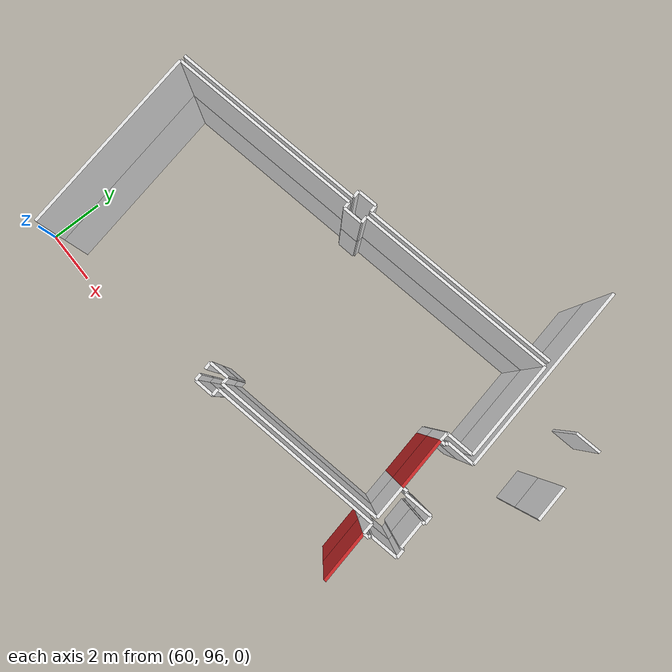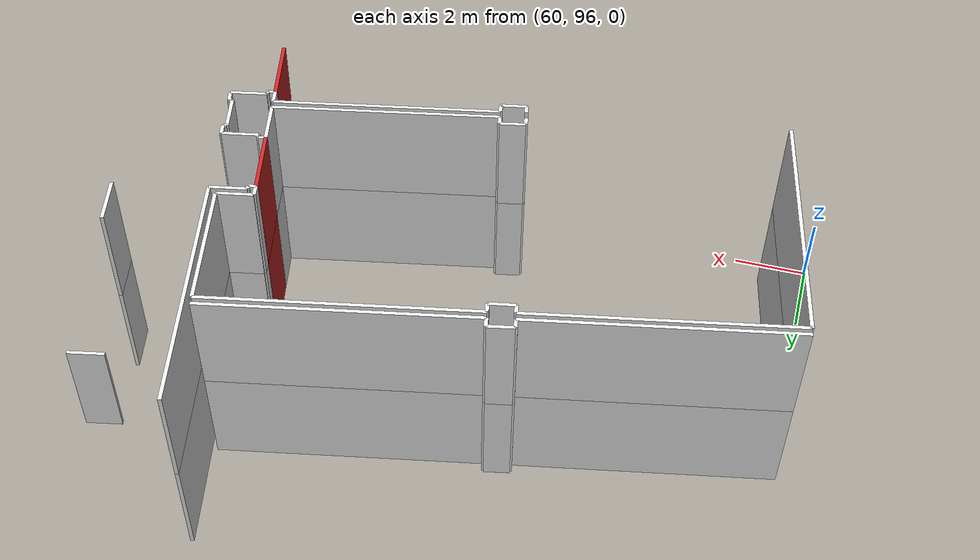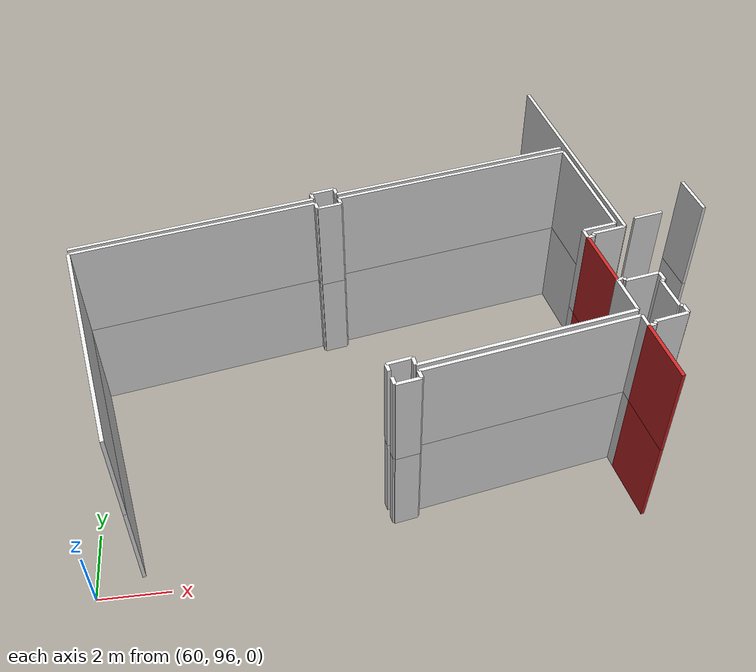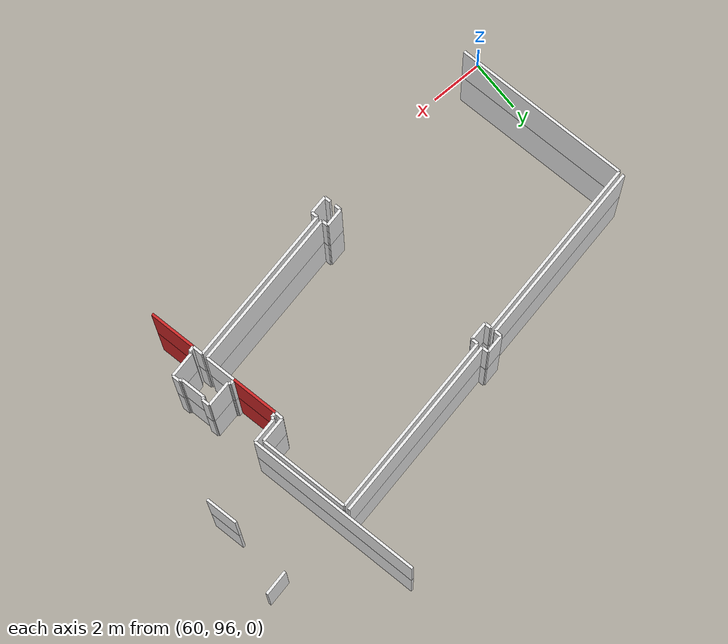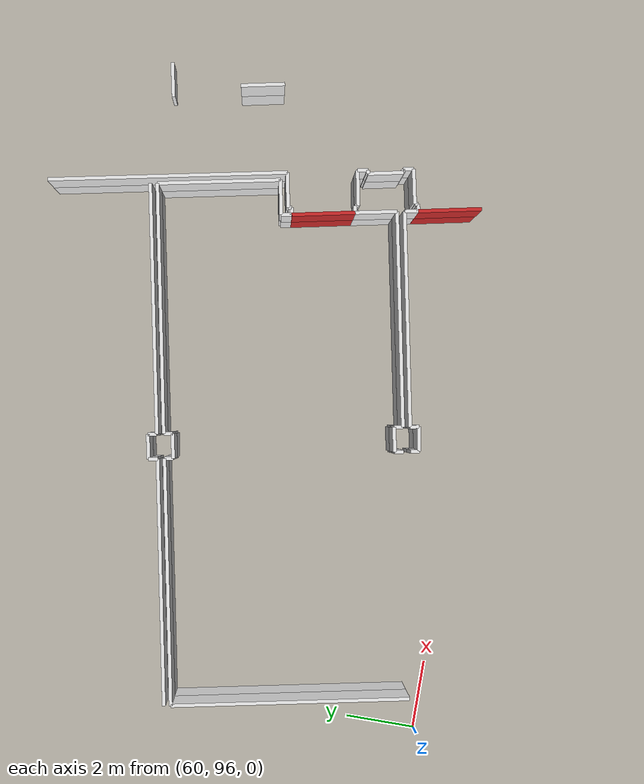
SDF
<sdf version="1.6">
 <world name="default">
  <model name="wall_74.4_101.3_1.5">
   <static>true</static>
   <pose>74.38000000000466 101.26000000000931 1.5 0 0 -1.3690339825092397</pose>
   <link name="link">
    <visual name="visual">
     <geometry><box><size>1.796440926065282 0.1 3</size></box></geometry>
     <material>
      <script><uri>file://media/materials/scripts/gazebo.material</uri><name>Gazebo/Red</name></script>
     </material>
    </visual>
    <collision name="collision"><geometry><box><size>1.796440926065282 0.1 3</size></box></geometry></collision>
   </link>
  </model>
  <model name="wall_75.1_97.8_1.5">
   <static>true</static>
   <pose>75.0800000000163 97.75 1.5 0 0 -1.3690339824572944</pose>
   <link name="link">
    <visual name="visual">
     <geometry><box><size>1.7964409256090668 0.1 3</size></box></geometry>
     <material>
      <script><uri>file://media/materials/scripts/gazebo.material</uri><name>Gazebo/Red</name></script>
     </material>
    </visual>
    <collision name="collision"><geometry><box><size>1.7964409256090668 0.1 3</size></box></geometry></collision>
   </link>
  </model>
  <model name="wall_74.4_101.3_4.5">
   <static>true</static>
   <pose>74.38000000000466 101.26000000000931 4.5 0 0 -1.3690339825092397</pose>
   <link name="link">
    <visual name="visual">
     <geometry><box><size>1.796440926065282 0.1 3</size></box></geometry>
     <material>
      <script><uri>file://media/materials/scripts/gazebo.material</uri><name>Gazebo/Red</name></script>
     </material>
    </visual>
    <collision name="collision"><geometry><box><size>1.796440926065282 0.1 3</size></box></geometry></collision>
   </link>
  </model>
  <model name="wall_75.1_97.8_4.5">
   <static>true</static>
   <pose>75.0800000000163 97.75 4.5 0 0 -1.3690339824572944</pose>
   <link name="link">
    <visual name="visual">
     <geometry><box><size>1.7964409256090668 0.1 3</size></box></geometry>
     <material>
      <script><uri>file://media/materials/scripts/gazebo.material</uri><name>Gazebo/Red</name></script>
     </material>
    </visual>
    <collision name="collision"><geometry><box><size>1.7964409256090668 0.1 3</size></box></geometry></collision>
   </link>
  </model>
  <model name="wall_63.3_104.1_1.5">
   <static>true</static>
   <pose>63.304999999993015 104.05499999993481 1.5 0 0 0.19403422798469777</pose>
   <link name="link">
    <visual name="visual">
     <geometry><box><size>7.001385577168813 0.1 3</size></box></geometry>
     <material>
      <script><uri>file://media/materials/scripts/gazebo.material</uri><name>Gazebo/White</name></script>
     </material>
    </visual>
    <collision name="collision"><geometry><box><size>7.001385577168813 0.1 3</size></box></geometry></collision>
   </link>
  </model>
  <model name="wall_66.7_104.9_1.5">
   <static>true</static>
   <pose>66.71499999999651 104.85499999998137 1.5 0 0 1.7681918866000021</pose>
   <link name="link">
    <visual name="visual">
     <geometry><box><size>0.25495097567735614 0.1 3</size></box></geometry>
     <material>
      <script><uri>file://media/materials/scripts/gazebo.material</uri><name>Gazebo/White</name></script>
     </material>
    </visual>
    <collision name="collision"><geometry><box><size>0.25495097567735614 0.1 3</size></box></geometry></collision>
   </link>
  </model>
  <model name="wall_67.0_105.1_1.5">
   <static>true</static>
   <pose>67.03500000000349 105.05000000004657 1.5 0 0 0.20018106814672346</pose>
   <link name="link">
    <visual name="visual">
     <geometry><box><size>0.7040596565914858 0.1 3</size></box></geometry>
     <material>
      <script><uri>file://media/materials/scripts/gazebo.material</uri><name>Gazebo/White</name></script>
     </material>
    </visual>
    <collision name="collision"><geometry><box><size>0.7040596565914858 0.1 3</size></box></geometry></collision>
   </link>
  </model>
  <model name="wall_67.4_105.0_1.5">
   <static>true</static>
   <pose>67.40499999999884 104.99500000011176 1.5 0 0 -1.373400766989791</pose>
   <link name="link">
    <visual name="visual">
     <geometry><box><size>0.25495097567735614 0.1 3</size></box></geometry>
     <material>
      <script><uri>file://media/materials/scripts/gazebo.material</uri><name>Gazebo/White</name></script>
     </material>
    </visual>
    <collision name="collision"><geometry><box><size>0.25495097567735614 0.1 3</size></box></geometry></collision>
   </link>
  </model>
  <model name="wall_70.9_105.6_1.5">
   <static>true</static>
   <pose>70.9199999999837 105.56000000005588 1.5 0 0 0.19519049174407682</pose>
   <link name="link">
    <visual name="visual">
     <geometry><box><size>7.115110680757645 0.1 3</size></box></geometry>
     <material>
      <script><uri>file://media/materials/scripts/gazebo.material</uri><name>Gazebo/White</name></script>
     </material>
    </visual>
    <collision name="collision"><geometry><box><size>7.115110680757645 0.1 3</size></box></geometry></collision>
   </link>
  </model>
  <model name="wall_74.2_102.3_1.5">
   <static>true</static>
   <pose>74.17500000001746 102.29000000003725 1.5 0 0 1.7359450042724507</pose>
   <link name="link">
    <visual name="visual">
     <geometry><box><size>0.30413812632926696 0.1 3</size></box></geometry>
     <material>
      <script><uri>file://media/materials/scripts/gazebo.material</uri><name>Gazebo/White</name></script>
     </material>
    </visual>
    <collision name="collision"><geometry><box><size>0.30413812632926696 0.1 3</size></box></geometry></collision>
   </link>
  </model>
  <model name="wall_74.6_102.5_1.5">
   <static>true</static>
   <pose>74.63500000000931 102.53499999991618 1.5 0 0 0.19342732666080192</pose>
   <link name="link">
    <visual name="visual">
     <geometry><box><size>0.9884331034139654 0.1 3</size></box></geometry>
     <material>
      <script><uri>file://media/materials/scripts/gazebo.material</uri><name>Gazebo/White</name></script>
     </material>
    </visual>
    <collision name="collision"><geometry><box><size>0.9884331034139654 0.1 3</size></box></geometry></collision>
   </link>
  </model>
  <model name="wall_74.8_104.3_1.5">
   <static>true</static>
   <pose>74.77999999999884 104.33999999985099 1.5 0 0 1.7670670277288347</pose>
   <link name="link">
    <visual name="visual">
     <geometry><box><size>3.4869470887125433 0.1 3</size></box></geometry>
     <material>
      <script><uri>file://media/materials/scripts/gazebo.material</uri><name>Gazebo/White</name></script>
     </material>
    </visual>
    <collision name="collision"><geometry><box><size>3.4869470887125433 0.1 3</size></box></geometry></collision>
   </link>
  </model>
  <model name="wall_71.0_105.4_1.5">
   <static>true</static>
   <pose>70.9549999999872 105.36499999999069 1.5 0 0 -2.9475101683600555</pose>
   <link name="link">
    <visual name="visual">
     <geometry><box><size>7.1033653995449395 0.1 3</size></box></geometry>
     <material>
      <script><uri>file://media/materials/scripts/gazebo.material</uri><name>Gazebo/White</name></script>
     </material>
    </visual>
    <collision name="collision"><geometry><box><size>7.1033653995449395 0.1 3</size></box></geometry></collision>
   </link>
  </model>
  <model name="wall_67.5_104.6_1.5">
   <static>true</static>
   <pose>67.49499999999534 104.55500000016764 1.5 0 0 -1.3734007667659154</pose>
   <link name="link">
    <visual name="visual">
     <geometry><box><size>0.2549509756887716 0.1 3</size></box></geometry>
     <material>
      <script><uri>file://media/materials/scripts/gazebo.material</uri><name>Gazebo/White</name></script>
     </material>
    </visual>
    <collision name="collision"><geometry><box><size>0.2549509756887716 0.1 3</size></box></geometry></collision>
   </link>
  </model>
  <model name="wall_67.2_104.4_1.5">
   <static>true</static>
   <pose>67.17500000001746 104.36499999999069 1.5 0 0 -2.9553698126839456</pose>
   <link name="link">
    <visual name="visual">
     <geometry><box><size>0.7021395873294909 0.1 3</size></box></geometry>
     <material>
      <script><uri>file://media/materials/scripts/gazebo.material</uri><name>Gazebo/White</name></script>
     </material>
    </visual>
    <collision name="collision"><geometry><box><size>0.7021395873294909 0.1 3</size></box></geometry></collision>
   </link>
  </model>
  <model name="wall_66.8_104.4_1.5">
   <static>true</static>
   <pose>66.80500000002212 104.4199999999255 1.5 0 0 1.7761917157522207</pose>
   <link name="link">
    <visual name="visual">
     <geometry><box><size>0.24515301365907008 0.1 3</size></box></geometry>
     <material>
      <script><uri>file://media/materials/scripts/gazebo.material</uri><name>Gazebo/White</name></script>
     </material>
    </visual>
    <collision name="collision"><geometry><box><size>0.24515301365907008 0.1 3</size></box></geometry></collision>
   </link>
  </model>
  <model name="wall_63.3_103.9_1.5">
   <static>true</static>
   <pose>63.345000000001164 103.86499999999069 1.5 0 0 -2.9475584256066987</pose>
   <link name="link">
    <visual name="visual">
     <geometry><box><size>7.001385577225929 0.1 3</size></box></geometry>
     <material>
      <script><uri>file://media/materials/scripts/gazebo.material</uri><name>Gazebo/White</name></script>
     </material>
    </visual>
    <collision name="collision"><geometry><box><size>7.001385577225929 0.1 3</size></box></geometry></collision>
   </link>
  </model>
  <model name="wall_60.6_99.9_1.5">
   <static>true</static>
   <pose>60.57499999998254 99.86999999987893 1.5 0 0 -1.3731111637109774</pose>
   <link name="link">
    <visual name="visual">
     <geometry><box><size>6.771890430431879 0.1 3</size></box></geometry>
     <material>
      <script><uri>file://media/materials/scripts/gazebo.material</uri><name>Gazebo/White</name></script>
     </material>
    </visual>
    <collision name="collision"><geometry><box><size>6.771890430431879 0.1 3</size></box></geometry></collision>
   </link>
  </model>
  <model name="wall_68.1_98.0_1.5">
   <static>true</static>
   <pose>68.08499999999185 98.02000000001863 1.5 0 0 1.7761917157522207</pose>
   <link name="link">
    <visual name="visual">
     <geometry><box><size>0.24515301365907008 0.1 3</size></box></geometry>
     <material>
      <script><uri>file://media/materials/scripts/gazebo.material</uri><name>Gazebo/White</name></script>
     </material>
    </visual>
    <collision name="collision"><geometry><box><size>0.24515301365907008 0.1 3</size></box></geometry></collision>
   </link>
  </model>
  <model name="wall_68.4_98.2_1.5">
   <static>true</static>
   <pose>68.40499999999884 98.20999999996275 1.5 0 0 0.20018106749853645</pose>
   <link name="link">
    <visual name="visual">
     <geometry><box><size>0.7040596564988906 0.1 3</size></box></geometry>
     <material>
      <script><uri>file://media/materials/scripts/gazebo.material</uri><name>Gazebo/White</name></script>
     </material>
    </visual>
    <collision name="collision"><geometry><box><size>0.7040596564988906 0.1 3</size></box></geometry></collision>
   </link>
  </model>
  <model name="wall_68.8_98.2_1.5">
   <static>true</static>
   <pose>68.76999999998952 98.15499999979511 1.5 0 0 -1.412141064690222</pose>
   <link name="link">
    <visual name="visual">
     <geometry><box><size>0.2531797780201326 0.1 3</size></box></geometry>
     <material>
      <script><uri>file://media/materials/scripts/gazebo.material</uri><name>Gazebo/White</name></script>
     </material>
    </visual>
    <collision name="collision"><geometry><box><size>0.2531797780201326 0.1 3</size></box></geometry></collision>
   </link>
  </model>
  <model name="wall_71.8_98.6_1.5">
   <static>true</static>
   <pose>71.78999999997905 98.625 1.5 0 0 0.1957924833792323</pose>
   <link name="link">
    <visual name="visual">
     <geometry><box><size>6.11687011477073 0.1 3</size></box></geometry>
     <material>
      <script><uri>file://media/materials/scripts/gazebo.material</uri><name>Gazebo/White</name></script>
     </material>
    </visual>
    <collision name="collision"><geometry><box><size>6.11687011477073 0.1 3</size></box></geometry></collision>
   </link>
  </model>
  <model name="wall_74.7_99.8_1.5">
   <static>true</static>
   <pose>74.67499999998836 99.80000000004657 1.5 0 0 1.76653351340899</pose>
   <link name="link">
    <visual name="visual">
     <geometry><box><size>1.1825819207381807 0.1 3</size></box></geometry>
     <material>
      <script><uri>file://media/materials/scripts/gazebo.material</uri><name>Gazebo/White</name></script>
     </material>
    </visual>
    <collision name="collision"><geometry><box><size>1.1825819207381807 0.1 3</size></box></geometry></collision>
   </link>
  </model>
  <model name="wall_74.9_98.8_1.5">
   <static>true</static>
   <pose>74.86500000001979 98.81999999983236 1.5 0 0 1.7529646373378367</pose>
   <link name="link">
    <visual name="visual">
     <geometry><box><size>0.3863935816185891 0.1 3</size></box></geometry>
     <material>
      <script><uri>file://media/materials/scripts/gazebo.material</uri><name>Gazebo/White</name></script>
     </material>
    </visual>
    <collision name="collision"><geometry><box><size>0.3863935816185891 0.1 3</size></box></geometry></collision>
   </link>
  </model>
  <model name="wall_71.8_98.4_1.5">
   <static>true</static>
   <pose>71.8300000000163 98.4199999999255 1.5 0 0 -2.947404266883771</pose>
   <link name="link">
    <visual name="visual">
     <geometry><box><size>6.114932542497641 0.1 3</size></box></geometry>
     <material>
      <script><uri>file://media/materials/scripts/gazebo.material</uri><name>Gazebo/White</name></script>
     </material>
    </visual>
    <collision name="collision"><geometry><box><size>6.114932542497641 0.1 3</size></box></geometry></collision>
   </link>
  </model>
  <model name="wall_68.9_97.7_1.5">
   <static>true</static>
   <pose>68.85500000001048 97.70999999996275 1.5 0 0 -1.3654009378375724</pose>
   <link name="link">
    <visual name="visual">
     <geometry><box><size>0.24515301365907008 0.1 3</size></box></geometry>
     <material>
      <script><uri>file://media/materials/scripts/gazebo.material</uri><name>Gazebo/White</name></script>
     </material>
    </visual>
    <collision name="collision"><geometry><box><size>0.24515301365907008 0.1 3</size></box></geometry></collision>
   </link>
  </model>
  <model name="wall_68.5_97.5_1.5">
   <static>true</static>
   <pose>68.54000000000815 97.52499999990687 1.5 0 0 -2.952695472868832</pose>
   <link name="link">
    <visual name="visual">
     <geometry><box><size>0.6923149571989928 0.1 3</size></box></geometry>
     <material>
      <script><uri>file://media/materials/scripts/gazebo.material</uri><name>Gazebo/White</name></script>
     </material>
    </visual>
    <collision name="collision"><geometry><box><size>0.6923149571989928 0.1 3</size></box></geometry></collision>
   </link>
  </model>
  <model name="wall_68.2_97.6_1.5">
   <static>true</static>
   <pose>68.17500000001746 97.5800000000745 1.5 0 0 1.7761917157522207</pose>
   <link name="link">
    <visual name="visual">
     <geometry><box><size>0.24515301365907008 0.1 3</size></box></geometry>
     <material>
      <script><uri>file://media/materials/scripts/gazebo.material</uri><name>Gazebo/White</name></script>
     </material>
    </visual>
    <collision name="collision"><geometry><box><size>0.24515301365907008 0.1 3</size></box></geometry></collision>
   </link>
  </model>
  <model name="wall_75.0_98.6_1.5">
   <static>true</static>
   <pose>75.0 98.64999999990687 1.5 0 0 0.1973955600737564</pose>
   <link name="link">
    <visual name="visual">
     <geometry><box><size>0.20396078050535543 0.1 3</size></box></geometry>
     <material>
      <script><uri>file://media/materials/scripts/gazebo.material</uri><name>Gazebo/White</name></script>
     </material>
    </visual>
    <collision name="collision"><geometry><box><size>0.20396078050535543 0.1 3</size></box></geometry></collision>
   </link>
  </model>
  <model name="wall_75.1_98.7_1.5">
   <static>true</static>
   <pose>75.09500000000116 98.71499999985099 1.5 0 0 1.6814535476138674</pose>
   <link name="link">
    <visual name="visual">
     <geometry><box><size>0.09055385122787446 0.1 3</size></box></geometry>
     <material>
      <script><uri>file://media/materials/scripts/gazebo.material</uri><name>Gazebo/White</name></script>
     </material>
    </visual>
    <collision name="collision"><geometry><box><size>0.09055385122787446 0.1 3</size></box></geometry></collision>
   </link>
  </model>
  <model name="wall_75.6_98.9_1.5">
   <static>true</static>
   <pose>75.57500000001164 98.85999999986961 1.5 0 0 0.20333608421816718</pose>
   <link name="link">
    <visual name="visual">
     <geometry><box><size>0.99040395799911 0.1 3</size></box></geometry>
     <material>
      <script><uri>file://media/materials/scripts/gazebo.material</uri><name>Gazebo/White</name></script>
     </material>
    </visual>
    <collision name="collision"><geometry><box><size>0.99040395799911 0.1 3</size></box></geometry></collision>
   </link>
  </model>
  <model name="wall_76.0_99.1_1.5">
   <static>true</static>
   <pose>76.02999999999884 99.10499999998137 1.5 0 0 1.7748143063542596</pose>
   <link name="link">
    <visual name="visual">
     <geometry><box><size>0.2961418579352255 0.1 3</size></box></geometry>
     <material>
      <script><uri>file://media/materials/scripts/gazebo.material</uri><name>Gazebo/White</name></script>
     </material>
    </visual>
    <collision name="collision"><geometry><box><size>0.2961418579352255 0.1 3</size></box></geometry></collision>
   </link>
  </model>
  <model name="wall_76.0_99.2_1.5">
   <static>true</static>
   <pose>75.9549999999872 99.23999999999069 1.5 0 0 -2.922923707578892</pose>
   <link name="link">
    <visual name="visual">
     <geometry><box><size>0.092195444601971 0.1 3</size></box></geometry>
     <material>
      <script><uri>file://media/materials/scripts/gazebo.material</uri><name>Gazebo/White</name></script>
     </material>
    </visual>
    <collision name="collision"><geometry><box><size>0.092195444601971 0.1 3</size></box></geometry></collision>
   </link>
  </model>
  <model name="wall_75.8_99.7_1.5">
   <static>true</static>
   <pose>75.80999999999767 99.71999999997206 1.5 0 0 1.7721134351276446</pose>
   <link name="link">
    <visual name="visual">
     <geometry><box><size>1.0001999799764374 0.1 3</size></box></geometry>
     <material>
      <script><uri>file://media/materials/scripts/gazebo.material</uri><name>Gazebo/White</name></script>
     </material>
    </visual>
    <collision name="collision"><geometry><box><size>1.0001999799764374 0.1 3</size></box></geometry></collision>
   </link>
  </model>
  <model name="wall_75.8_100.2_1.5">
   <static>true</static>
   <pose>75.76000000000931 100.21999999997206 1.5 0 0 0.1973955600737564</pose>
   <link name="link">
    <visual name="visual">
     <geometry><box><size>0.10198039025267772 0.1 3</size></box></geometry>
     <material>
      <script><uri>file://media/materials/scripts/gazebo.material</uri><name>Gazebo/White</name></script>
     </material>
    </visual>
    <collision name="collision"><geometry><box><size>0.10198039025267772 0.1 3</size></box></geometry></collision>
   </link>
  </model>
  <model name="wall_75.8_100.4_1.5">
   <static>true</static>
   <pose>75.77999999999884 100.375 1.5 0 0 1.7748143063542596</pose>
   <link name="link">
    <visual name="visual">
     <geometry><box><size>0.2961418579352255 0.1 3</size></box></geometry>
     <material>
      <script><uri>file://media/materials/scripts/gazebo.material</uri><name>Gazebo/White</name></script>
     </material>
    </visual>
    <collision name="collision"><geometry><box><size>0.2961418579352255 0.1 3</size></box></geometry></collision>
   </link>
  </model>
  <model name="wall_75.3_100.4_1.5">
   <static>true</static>
   <pose>75.26000000000931 100.42500000004657 1.5 0 0 -2.950090935171577</pose>
   <link name="link">
    <visual name="visual">
     <geometry><box><size>0.9982484660355146 0.1 3</size></box></geometry>
     <material>
      <script><uri>file://media/materials/scripts/gazebo.material</uri><name>Gazebo/White</name></script>
     </material>
    </visual>
    <collision name="collision"><geometry><box><size>0.9982484660355146 0.1 3</size></box></geometry></collision>
   </link>
  </model>
  <model name="wall_74.8_100.4_1.5">
   <static>true</static>
   <pose>74.76000000000931 100.375 1.5 0 0 1.7894652732166754</pose>
   <link name="link">
    <visual name="visual">
     <geometry><box><size>0.0921954444315063 0.1 3</size></box></geometry>
     <material>
      <script><uri>file://media/materials/scripts/gazebo.material</uri><name>Gazebo/White</name></script>
     </material>
    </visual>
    <collision name="collision"><geometry><box><size>0.0921954444315063 0.1 3</size></box></geometry></collision>
   </link>
  </model>
  <model name="wall_74.7_100.4_1.5">
   <static>true</static>
   <pose>74.65499999999884 100.39999999990687 1.5 0 0 -2.9340964269693144</pose>
   <link name="link">
    <visual name="visual">
     <geometry><box><size>0.19416487839942884 0.1 3</size></box></geometry>
     <material>
      <script><uri>file://media/materials/scripts/gazebo.material</uri><name>Gazebo/White</name></script>
     </material>
    </visual>
    <collision name="collision"><geometry><box><size>0.19416487839942884 0.1 3</size></box></geometry></collision>
   </link>
  </model>
  <model name="wall_74.3_102.2_1.5">
   <static>true</static>
   <pose>74.30000000001746 102.16000000014901 1.5 0 0 0.19739556001778746</pose>
   <link name="link">
    <visual name="visual">
     <geometry><box><size>0.20396078056243275 0.1 3</size></box></geometry>
     <material>
      <script><uri>file://media/materials/scripts/gazebo.material</uri><name>Gazebo/White</name></script>
     </material>
    </visual>
    <collision name="collision"><geometry><box><size>0.20396078056243275 0.1 3</size></box></geometry></collision>
   </link>
  </model>
  <model name="wall_74.4_102.2_1.5">
   <static>true</static>
   <pose>74.39000000001397 102.22999999998137 1.5 0 0 1.7681918875402798</pose>
   <link name="link">
    <visual name="visual">
     <geometry><box><size>0.10198038991021388 0.1 3</size></box></geometry>
     <material>
      <script><uri>file://media/materials/scripts/gazebo.material</uri><name>Gazebo/White</name></script>
     </material>
    </visual>
    <collision name="collision"><geometry><box><size>0.10198038991021388 0.1 3</size></box></geometry></collision>
   </link>
  </model>
  <model name="wall_74.9_102.4_1.5">
   <static>true</static>
   <pose>74.86999999999534 102.375 1.5 0 0 0.19150171887616704</pose>
   <link name="link">
    <visual name="visual">
     <geometry><box><size>0.9982484661241455 0.1 3</size></box></geometry>
     <material>
      <script><uri>file://media/materials/scripts/gazebo.material</uri><name>Gazebo/White</name></script>
     </material>
    </visual>
    <collision name="collision"><geometry><box><size>0.9982484661241455 0.1 3</size></box></geometry></collision>
   </link>
  </model>
  <model name="wall_74.7_105.8_1.5">
   <static>true</static>
   <pose>74.69500000000698 105.80000000004657 1.5 0 0 1.7679031196908237</pose>
   <link name="link">
    <visual name="visual">
     <geometry><box><size>6.791502042675887 0.1 3</size></box></geometry>
     <material>
      <script><uri>file://media/materials/scripts/gazebo.material</uri><name>Gazebo/White</name></script>
     </material>
    </visual>
    <collision name="collision"><geometry><box><size>6.791502042675887 0.1 3</size></box></geometry></collision>
   </link>
  </model>
  <model name="wall_77.7_106.2_1.5">
   <static>true</static>
   <pose>77.67999999999302 106.22999999998137 1.5 0 0 0.2013171085608308</pose>
   <link name="link">
    <visual name="visual">
     <geometry><box><size>1.0001999800229942 0.1 3</size></box></geometry>
     <material>
      <script><uri>file://media/materials/scripts/gazebo.material</uri><name>Gazebo/White</name></script>
     </material>
    </visual>
    <collision name="collision"><geometry><box><size>1.0001999800229942 0.1 3</size></box></geometry></collision>
   </link>
  </model>
  <model name="wall_77.7_103.6_1.5">
   <static>true</static>
   <pose>77.69500000000698 103.57000000006519 1.5 0 0 -1.3686763926784307</pose>
   <link name="link">
    <visual name="visual">
     <geometry><box><size>1.2453513562444674 0.1 3</size></box></geometry>
     <material>
      <script><uri>file://media/materials/scripts/gazebo.material</uri><name>Gazebo/White</name></script>
     </material>
    </visual>
    <collision name="collision"><geometry><box><size>1.2453513562444674 0.1 3</size></box></geometry></collision>
   </link>
  </model>
  <model name="wall_63.3_104.1_4.5">
   <static>true</static>
   <pose>63.304999999993015 104.05499999993481 4.5 0 0 0.19403422798469777</pose>
   <link name="link">
    <visual name="visual">
     <geometry><box><size>7.001385577168813 0.1 3</size></box></geometry>
     <material>
      <script><uri>file://media/materials/scripts/gazebo.material</uri><name>Gazebo/White</name></script>
     </material>
    </visual>
    <collision name="collision"><geometry><box><size>7.001385577168813 0.1 3</size></box></geometry></collision>
   </link>
  </model>
  <model name="wall_66.7_104.9_4.5">
   <static>true</static>
   <pose>66.71499999999651 104.85499999998137 4.5 0 0 1.7681918866000021</pose>
   <link name="link">
    <visual name="visual">
     <geometry><box><size>0.25495097567735614 0.1 3</size></box></geometry>
     <material>
      <script><uri>file://media/materials/scripts/gazebo.material</uri><name>Gazebo/White</name></script>
     </material>
    </visual>
    <collision name="collision"><geometry><box><size>0.25495097567735614 0.1 3</size></box></geometry></collision>
   </link>
  </model>
  <model name="wall_67.0_105.1_4.5">
   <static>true</static>
   <pose>67.03500000000349 105.05000000004657 4.5 0 0 0.20018106814672346</pose>
   <link name="link">
    <visual name="visual">
     <geometry><box><size>0.7040596565914858 0.1 3</size></box></geometry>
     <material>
      <script><uri>file://media/materials/scripts/gazebo.material</uri><name>Gazebo/White</name></script>
     </material>
    </visual>
    <collision name="collision"><geometry><box><size>0.7040596565914858 0.1 3</size></box></geometry></collision>
   </link>
  </model>
  <model name="wall_67.4_105.0_4.5">
   <static>true</static>
   <pose>67.40499999999884 104.99500000011176 4.5 0 0 -1.373400766989791</pose>
   <link name="link">
    <visual name="visual">
     <geometry><box><size>0.25495097567735614 0.1 3</size></box></geometry>
     <material>
      <script><uri>file://media/materials/scripts/gazebo.material</uri><name>Gazebo/White</name></script>
     </material>
    </visual>
    <collision name="collision"><geometry><box><size>0.25495097567735614 0.1 3</size></box></geometry></collision>
   </link>
  </model>
  <model name="wall_70.9_105.6_4.5">
   <static>true</static>
   <pose>70.9199999999837 105.56000000005588 4.5 0 0 0.19519049174407682</pose>
   <link name="link">
    <visual name="visual">
     <geometry><box><size>7.115110680757645 0.1 3</size></box></geometry>
     <material>
      <script><uri>file://media/materials/scripts/gazebo.material</uri><name>Gazebo/White</name></script>
     </material>
    </visual>
    <collision name="collision"><geometry><box><size>7.115110680757645 0.1 3</size></box></geometry></collision>
   </link>
  </model>
  <model name="wall_74.2_102.3_4.5">
   <static>true</static>
   <pose>74.17500000001746 102.29000000003725 4.5 0 0 1.7359450042724507</pose>
   <link name="link">
    <visual name="visual">
     <geometry><box><size>0.30413812632926696 0.1 3</size></box></geometry>
     <material>
      <script><uri>file://media/materials/scripts/gazebo.material</uri><name>Gazebo/White</name></script>
     </material>
    </visual>
    <collision name="collision"><geometry><box><size>0.30413812632926696 0.1 3</size></box></geometry></collision>
   </link>
  </model>
  <model name="wall_74.6_102.5_4.5">
   <static>true</static>
   <pose>74.63500000000931 102.53499999991618 4.5 0 0 0.19342732666080192</pose>
   <link name="link">
    <visual name="visual">
     <geometry><box><size>0.9884331034139654 0.1 3</size></box></geometry>
     <material>
      <script><uri>file://media/materials/scripts/gazebo.material</uri><name>Gazebo/White</name></script>
     </material>
    </visual>
    <collision name="collision"><geometry><box><size>0.9884331034139654 0.1 3</size></box></geometry></collision>
   </link>
  </model>
  <model name="wall_74.8_104.3_4.5">
   <static>true</static>
   <pose>74.77999999999884 104.33999999985099 4.5 0 0 1.7670670277288347</pose>
   <link name="link">
    <visual name="visual">
     <geometry><box><size>3.4869470887125433 0.1 3</size></box></geometry>
     <material>
      <script><uri>file://media/materials/scripts/gazebo.material</uri><name>Gazebo/White</name></script>
     </material>
    </visual>
    <collision name="collision"><geometry><box><size>3.4869470887125433 0.1 3</size></box></geometry></collision>
   </link>
  </model>
  <model name="wall_71.0_105.4_4.5">
   <static>true</static>
   <pose>70.9549999999872 105.36499999999069 4.5 0 0 -2.9475101683600555</pose>
   <link name="link">
    <visual name="visual">
     <geometry><box><size>7.1033653995449395 0.1 3</size></box></geometry>
     <material>
      <script><uri>file://media/materials/scripts/gazebo.material</uri><name>Gazebo/White</name></script>
     </material>
    </visual>
    <collision name="collision"><geometry><box><size>7.1033653995449395 0.1 3</size></box></geometry></collision>
   </link>
  </model>
  <model name="wall_67.5_104.6_4.5">
   <static>true</static>
   <pose>67.49499999999534 104.55500000016764 4.5 0 0 -1.3734007667659154</pose>
   <link name="link">
    <visual name="visual">
     <geometry><box><size>0.2549509756887716 0.1 3</size></box></geometry>
     <material>
      <script><uri>file://media/materials/scripts/gazebo.material</uri><name>Gazebo/White</name></script>
     </material>
    </visual>
    <collision name="collision"><geometry><box><size>0.2549509756887716 0.1 3</size></box></geometry></collision>
   </link>
  </model>
  <model name="wall_67.2_104.4_4.5">
   <static>true</static>
   <pose>67.17500000001746 104.36499999999069 4.5 0 0 -2.9553698126839456</pose>
   <link name="link">
    <visual name="visual">
     <geometry><box><size>0.7021395873294909 0.1 3</size></box></geometry>
     <material>
      <script><uri>file://media/materials/scripts/gazebo.material</uri><name>Gazebo/White</name></script>
     </material>
    </visual>
    <collision name="collision"><geometry><box><size>0.7021395873294909 0.1 3</size></box></geometry></collision>
   </link>
  </model>
  <model name="wall_66.8_104.4_4.5">
   <static>true</static>
   <pose>66.80500000002212 104.4199999999255 4.5 0 0 1.7761917157522207</pose>
   <link name="link">
    <visual name="visual">
     <geometry><box><size>0.24515301365907008 0.1 3</size></box></geometry>
     <material>
      <script><uri>file://media/materials/scripts/gazebo.material</uri><name>Gazebo/White</name></script>
     </material>
    </visual>
    <collision name="collision"><geometry><box><size>0.24515301365907008 0.1 3</size></box></geometry></collision>
   </link>
  </model>
  <model name="wall_63.3_103.9_4.5">
   <static>true</static>
   <pose>63.345000000001164 103.86499999999069 4.5 0 0 -2.9475584256066987</pose>
   <link name="link">
    <visual name="visual">
     <geometry><box><size>7.001385577225929 0.1 3</size></box></geometry>
     <material>
      <script><uri>file://media/materials/scripts/gazebo.material</uri><name>Gazebo/White</name></script>
     </material>
    </visual>
    <collision name="collision"><geometry><box><size>7.001385577225929 0.1 3</size></box></geometry></collision>
   </link>
  </model>
  <model name="wall_60.6_99.9_4.5">
   <static>true</static>
   <pose>60.57499999998254 99.86999999987893 4.5 0 0 -1.3731111637109774</pose>
   <link name="link">
    <visual name="visual">
     <geometry><box><size>6.771890430431879 0.1 3</size></box></geometry>
     <material>
      <script><uri>file://media/materials/scripts/gazebo.material</uri><name>Gazebo/White</name></script>
     </material>
    </visual>
    <collision name="collision"><geometry><box><size>6.771890430431879 0.1 3</size></box></geometry></collision>
   </link>
  </model>
  <model name="wall_68.1_98.0_4.5">
   <static>true</static>
   <pose>68.08499999999185 98.02000000001863 4.5 0 0 1.7761917157522207</pose>
   <link name="link">
    <visual name="visual">
     <geometry><box><size>0.24515301365907008 0.1 3</size></box></geometry>
     <material>
      <script><uri>file://media/materials/scripts/gazebo.material</uri><name>Gazebo/White</name></script>
     </material>
    </visual>
    <collision name="collision"><geometry><box><size>0.24515301365907008 0.1 3</size></box></geometry></collision>
   </link>
  </model>
  <model name="wall_68.4_98.2_4.5">
   <static>true</static>
   <pose>68.40499999999884 98.20999999996275 4.5 0 0 0.20018106749853645</pose>
   <link name="link">
    <visual name="visual">
     <geometry><box><size>0.7040596564988906 0.1 3</size></box></geometry>
     <material>
      <script><uri>file://media/materials/scripts/gazebo.material</uri><name>Gazebo/White</name></script>
     </material>
    </visual>
    <collision name="collision"><geometry><box><size>0.7040596564988906 0.1 3</size></box></geometry></collision>
   </link>
  </model>
  <model name="wall_68.8_98.2_4.5">
   <static>true</static>
   <pose>68.76999999998952 98.15499999979511 4.5 0 0 -1.412141064690222</pose>
   <link name="link">
    <visual name="visual">
     <geometry><box><size>0.2531797780201326 0.1 3</size></box></geometry>
     <material>
      <script><uri>file://media/materials/scripts/gazebo.material</uri><name>Gazebo/White</name></script>
     </material>
    </visual>
    <collision name="collision"><geometry><box><size>0.2531797780201326 0.1 3</size></box></geometry></collision>
   </link>
  </model>
  <model name="wall_71.8_98.6_4.5">
   <static>true</static>
   <pose>71.78999999997905 98.625 4.5 0 0 0.1957924833792323</pose>
   <link name="link">
    <visual name="visual">
     <geometry><box><size>6.11687011477073 0.1 3</size></box></geometry>
     <material>
      <script><uri>file://media/materials/scripts/gazebo.material</uri><name>Gazebo/White</name></script>
     </material>
    </visual>
    <collision name="collision"><geometry><box><size>6.11687011477073 0.1 3</size></box></geometry></collision>
   </link>
  </model>
  <model name="wall_74.7_99.8_4.5">
   <static>true</static>
   <pose>74.67499999998836 99.80000000004657 4.5 0 0 1.76653351340899</pose>
   <link name="link">
    <visual name="visual">
     <geometry><box><size>1.1825819207381807 0.1 3</size></box></geometry>
     <material>
      <script><uri>file://media/materials/scripts/gazebo.material</uri><name>Gazebo/White</name></script>
     </material>
    </visual>
    <collision name="collision"><geometry><box><size>1.1825819207381807 0.1 3</size></box></geometry></collision>
   </link>
  </model>
  <model name="wall_74.9_98.8_4.5">
   <static>true</static>
   <pose>74.86500000001979 98.81999999983236 4.5 0 0 1.7529646373378367</pose>
   <link name="link">
    <visual name="visual">
     <geometry><box><size>0.3863935816185891 0.1 3</size></box></geometry>
     <material>
      <script><uri>file://media/materials/scripts/gazebo.material</uri><name>Gazebo/White</name></script>
     </material>
    </visual>
    <collision name="collision"><geometry><box><size>0.3863935816185891 0.1 3</size></box></geometry></collision>
   </link>
  </model>
  <model name="wall_71.8_98.4_4.5">
   <static>true</static>
   <pose>71.8300000000163 98.4199999999255 4.5 0 0 -2.947404266883771</pose>
   <link name="link">
    <visual name="visual">
     <geometry><box><size>6.114932542497641 0.1 3</size></box></geometry>
     <material>
      <script><uri>file://media/materials/scripts/gazebo.material</uri><name>Gazebo/White</name></script>
     </material>
    </visual>
    <collision name="collision"><geometry><box><size>6.114932542497641 0.1 3</size></box></geometry></collision>
   </link>
  </model>
  <model name="wall_68.9_97.7_4.5">
   <static>true</static>
   <pose>68.85500000001048 97.70999999996275 4.5 0 0 -1.3654009378375724</pose>
   <link name="link">
    <visual name="visual">
     <geometry><box><size>0.24515301365907008 0.1 3</size></box></geometry>
     <material>
      <script><uri>file://media/materials/scripts/gazebo.material</uri><name>Gazebo/White</name></script>
     </material>
    </visual>
    <collision name="collision"><geometry><box><size>0.24515301365907008 0.1 3</size></box></geometry></collision>
   </link>
  </model>
  <model name="wall_68.5_97.5_4.5">
   <static>true</static>
   <pose>68.54000000000815 97.52499999990687 4.5 0 0 -2.952695472868832</pose>
   <link name="link">
    <visual name="visual">
     <geometry><box><size>0.6923149571989928 0.1 3</size></box></geometry>
     <material>
      <script><uri>file://media/materials/scripts/gazebo.material</uri><name>Gazebo/White</name></script>
     </material>
    </visual>
    <collision name="collision"><geometry><box><size>0.6923149571989928 0.1 3</size></box></geometry></collision>
   </link>
  </model>
  <model name="wall_68.2_97.6_4.5">
   <static>true</static>
   <pose>68.17500000001746 97.5800000000745 4.5 0 0 1.7761917157522207</pose>
   <link name="link">
    <visual name="visual">
     <geometry><box><size>0.24515301365907008 0.1 3</size></box></geometry>
     <material>
      <script><uri>file://media/materials/scripts/gazebo.material</uri><name>Gazebo/White</name></script>
     </material>
    </visual>
    <collision name="collision"><geometry><box><size>0.24515301365907008 0.1 3</size></box></geometry></collision>
   </link>
  </model>
  <model name="wall_75.0_98.6_4.5">
   <static>true</static>
   <pose>75.0 98.64999999990687 4.5 0 0 0.1973955600737564</pose>
   <link name="link">
    <visual name="visual">
     <geometry><box><size>0.20396078050535543 0.1 3</size></box></geometry>
     <material>
      <script><uri>file://media/materials/scripts/gazebo.material</uri><name>Gazebo/White</name></script>
     </material>
    </visual>
    <collision name="collision"><geometry><box><size>0.20396078050535543 0.1 3</size></box></geometry></collision>
   </link>
  </model>
  <model name="wall_75.1_98.7_4.5">
   <static>true</static>
   <pose>75.09500000000116 98.71499999985099 4.5 0 0 1.6814535476138674</pose>
   <link name="link">
    <visual name="visual">
     <geometry><box><size>0.09055385122787446 0.1 3</size></box></geometry>
     <material>
      <script><uri>file://media/materials/scripts/gazebo.material</uri><name>Gazebo/White</name></script>
     </material>
    </visual>
    <collision name="collision"><geometry><box><size>0.09055385122787446 0.1 3</size></box></geometry></collision>
   </link>
  </model>
  <model name="wall_75.6_98.9_4.5">
   <static>true</static>
   <pose>75.57500000001164 98.85999999986961 4.5 0 0 0.20333608421816718</pose>
   <link name="link">
    <visual name="visual">
     <geometry><box><size>0.99040395799911 0.1 3</size></box></geometry>
     <material>
      <script><uri>file://media/materials/scripts/gazebo.material</uri><name>Gazebo/White</name></script>
     </material>
    </visual>
    <collision name="collision"><geometry><box><size>0.99040395799911 0.1 3</size></box></geometry></collision>
   </link>
  </model>
  <model name="wall_76.0_99.1_4.5">
   <static>true</static>
   <pose>76.02999999999884 99.10499999998137 4.5 0 0 1.7748143063542596</pose>
   <link name="link">
    <visual name="visual">
     <geometry><box><size>0.2961418579352255 0.1 3</size></box></geometry>
     <material>
      <script><uri>file://media/materials/scripts/gazebo.material</uri><name>Gazebo/White</name></script>
     </material>
    </visual>
    <collision name="collision"><geometry><box><size>0.2961418579352255 0.1 3</size></box></geometry></collision>
   </link>
  </model>
  <model name="wall_76.0_99.2_4.5">
   <static>true</static>
   <pose>75.9549999999872 99.23999999999069 4.5 0 0 -2.922923707578892</pose>
   <link name="link">
    <visual name="visual">
     <geometry><box><size>0.092195444601971 0.1 3</size></box></geometry>
     <material>
      <script><uri>file://media/materials/scripts/gazebo.material</uri><name>Gazebo/White</name></script>
     </material>
    </visual>
    <collision name="collision"><geometry><box><size>0.092195444601971 0.1 3</size></box></geometry></collision>
   </link>
  </model>
  <model name="wall_75.8_99.7_4.5">
   <static>true</static>
   <pose>75.80999999999767 99.71999999997206 4.5 0 0 1.7721134351276446</pose>
   <link name="link">
    <visual name="visual">
     <geometry><box><size>1.0001999799764374 0.1 3</size></box></geometry>
     <material>
      <script><uri>file://media/materials/scripts/gazebo.material</uri><name>Gazebo/White</name></script>
     </material>
    </visual>
    <collision name="collision"><geometry><box><size>1.0001999799764374 0.1 3</size></box></geometry></collision>
   </link>
  </model>
  <model name="wall_75.8_100.2_4.5">
   <static>true</static>
   <pose>75.76000000000931 100.21999999997206 4.5 0 0 0.1973955600737564</pose>
   <link name="link">
    <visual name="visual">
     <geometry><box><size>0.10198039025267772 0.1 3</size></box></geometry>
     <material>
      <script><uri>file://media/materials/scripts/gazebo.material</uri><name>Gazebo/White</name></script>
     </material>
    </visual>
    <collision name="collision"><geometry><box><size>0.10198039025267772 0.1 3</size></box></geometry></collision>
   </link>
  </model>
  <model name="wall_75.8_100.4_4.5">
   <static>true</static>
   <pose>75.77999999999884 100.375 4.5 0 0 1.7748143063542596</pose>
   <link name="link">
    <visual name="visual">
     <geometry><box><size>0.2961418579352255 0.1 3</size></box></geometry>
     <material>
      <script><uri>file://media/materials/scripts/gazebo.material</uri><name>Gazebo/White</name></script>
     </material>
    </visual>
    <collision name="collision"><geometry><box><size>0.2961418579352255 0.1 3</size></box></geometry></collision>
   </link>
  </model>
  <model name="wall_75.3_100.4_4.5">
   <static>true</static>
   <pose>75.26000000000931 100.42500000004657 4.5 0 0 -2.950090935171577</pose>
   <link name="link">
    <visual name="visual">
     <geometry><box><size>0.9982484660355146 0.1 3</size></box></geometry>
     <material>
      <script><uri>file://media/materials/scripts/gazebo.material</uri><name>Gazebo/White</name></script>
     </material>
    </visual>
    <collision name="collision"><geometry><box><size>0.9982484660355146 0.1 3</size></box></geometry></collision>
   </link>
  </model>
  <model name="wall_74.8_100.4_4.5">
   <static>true</static>
   <pose>74.76000000000931 100.375 4.5 0 0 1.7894652732166754</pose>
   <link name="link">
    <visual name="visual">
     <geometry><box><size>0.0921954444315063 0.1 3</size></box></geometry>
     <material>
      <script><uri>file://media/materials/scripts/gazebo.material</uri><name>Gazebo/White</name></script>
     </material>
    </visual>
    <collision name="collision"><geometry><box><size>0.0921954444315063 0.1 3</size></box></geometry></collision>
   </link>
  </model>
  <model name="wall_74.7_100.4_4.5">
   <static>true</static>
   <pose>74.65499999999884 100.39999999990687 4.5 0 0 -2.9340964269693144</pose>
   <link name="link">
    <visual name="visual">
     <geometry><box><size>0.19416487839942884 0.1 3</size></box></geometry>
     <material>
      <script><uri>file://media/materials/scripts/gazebo.material</uri><name>Gazebo/White</name></script>
     </material>
    </visual>
    <collision name="collision"><geometry><box><size>0.19416487839942884 0.1 3</size></box></geometry></collision>
   </link>
  </model>
  <model name="wall_74.3_102.2_4.5">
   <static>true</static>
   <pose>74.30000000001746 102.16000000014901 4.5 0 0 0.19739556001778746</pose>
   <link name="link">
    <visual name="visual">
     <geometry><box><size>0.20396078056243275 0.1 3</size></box></geometry>
     <material>
      <script><uri>file://media/materials/scripts/gazebo.material</uri><name>Gazebo/White</name></script>
     </material>
    </visual>
    <collision name="collision"><geometry><box><size>0.20396078056243275 0.1 3</size></box></geometry></collision>
   </link>
  </model>
  <model name="wall_74.4_102.2_4.5">
   <static>true</static>
   <pose>74.39000000001397 102.22999999998137 4.5 0 0 1.7681918875402798</pose>
   <link name="link">
    <visual name="visual">
     <geometry><box><size>0.10198038991021388 0.1 3</size></box></geometry>
     <material>
      <script><uri>file://media/materials/scripts/gazebo.material</uri><name>Gazebo/White</name></script>
     </material>
    </visual>
    <collision name="collision"><geometry><box><size>0.10198038991021388 0.1 3</size></box></geometry></collision>
   </link>
  </model>
  <model name="wall_74.9_102.4_4.5">
   <static>true</static>
   <pose>74.86999999999534 102.375 4.5 0 0 0.19150171887616704</pose>
   <link name="link">
    <visual name="visual">
     <geometry><box><size>0.9982484661241455 0.1 3</size></box></geometry>
     <material>
      <script><uri>file://media/materials/scripts/gazebo.material</uri><name>Gazebo/White</name></script>
     </material>
    </visual>
    <collision name="collision"><geometry><box><size>0.9982484661241455 0.1 3</size></box></geometry></collision>
   </link>
  </model>
  <model name="wall_74.7_105.8_4.5">
   <static>true</static>
   <pose>74.69500000000698 105.80000000004657 4.5 0 0 1.7679031196908237</pose>
   <link name="link">
    <visual name="visual">
     <geometry><box><size>6.791502042675887 0.1 3</size></box></geometry>
     <material>
      <script><uri>file://media/materials/scripts/gazebo.material</uri><name>Gazebo/White</name></script>
     </material>
    </visual>
    <collision name="collision"><geometry><box><size>6.791502042675887 0.1 3</size></box></geometry></collision>
   </link>
  </model>
  <model name="wall_77.7_103.6_4.5">
   <static>true</static>
   <pose>77.69500000000698 103.57000000006519 4.5 0 0 -1.3686763926784307</pose>
   <link name="link">
    <visual name="visual">
     <geometry><box><size>1.2453513562444674 0.1 3</size></box></geometry>
     <material>
      <script><uri>file://media/materials/scripts/gazebo.material</uri><name>Gazebo/White</name></script>
     </material>
    </visual>
    <collision name="collision"><geometry><box><size>1.2453513562444674 0.1 3</size></box></geometry></collision>
   </link>
  </model>
 </world>
</sdf>
